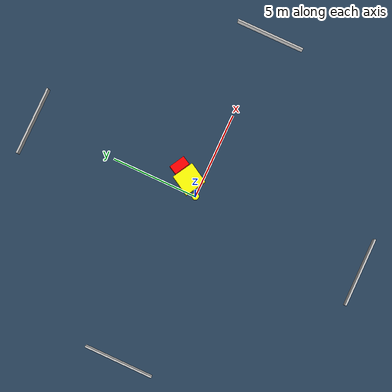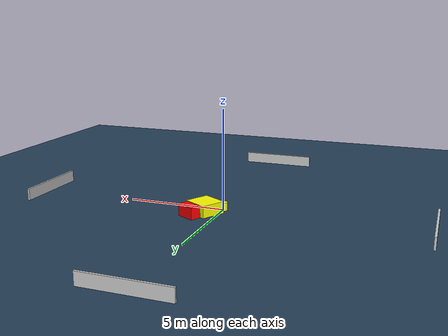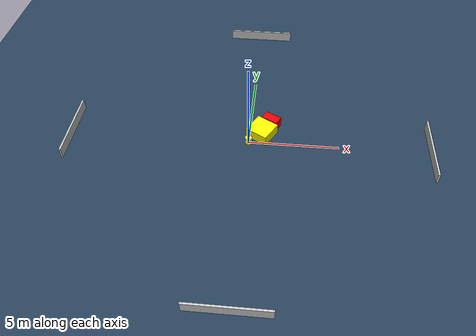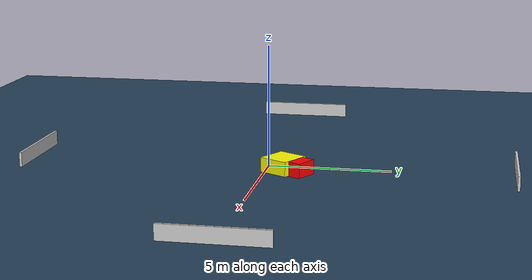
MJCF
<?xml version="1.0" ?>
<mujoco model="generated_environment">
  <option timestep="0.01" integrator="RK4" cone="elliptic"/>
  <default>
    <geom density="1"/>
  </default>
  <asset>
    <texture builtin="gradient" height="3072" name="skybox" rgb1="0.3 0.5 0.7" rgb2="0 0 0" type="skybox" width="512"/>
    <texture builtin="checker" height="300" name="groundplane" rgb1="0.2 0.3 0.4" rgb2="0.1 0.2 0.3" type="2d" width="300"/>
    <material name="groundplane" reflectance="0.2" texrepeat="5 5" texture="groundplane"/>
  </asset>
  <worldbody>
    <light dir="0 0 -1" directional="true" pos="0 0 1.5"/>
    <geom condim="3" friction="0.5 0.005 0.001" material="groundplane" name="floor" pos="0 0 0" size="0 0 0.05" type="plane"/>
    <body name="walls">
      <geom name="wall_1" condim="4" pos="-10.0 0.0 0.3" rgba="0.800000011920929 0.800000011920929 0.800000011920929 1.0" size="0.05 2.0 0.3" type="box"/>
      <geom name="wall_2" condim="4" pos="10.0 0.0 0.3" rgba="0.800000011920929 0.800000011920929 0.800000011920929 1.0" size="0.05 2.0 0.3" type="box"/>
      <geom name="wall_3" condim="4" pos="0.0 -10.0 0.3" rgba="0.800000011920929 0.800000011920929 0.800000011920929 1.0" size="2.0 0.05 0.3" type="box"/>
      <geom name="wall_4" condim="4" pos="0.0 10.0 0.3" rgba="0.800000011920929 0.800000011920929 0.800000011920929 1.0" size="2.0 0.05 0.3" type="box"/>
    </body>
    <body name="robot">
      <joint name="joint_x" type="slide" pos="0 0 0" axis="1 0 0"/>
      <joint name="joint_y" type="slide" pos="0 0 0" axis="0 1 0"/>
      <geom name="robot" type="cylinder" pos="0.0 0.0 0.2" size="0.2 0.2 0.0" mass="5.0" friction="1.0 0.005 0.0001" condim="4" rgba="1.0 1.0 0.0 1.0"/>
    </body>
    <body name="obstacle_1_movable">
      <geom name="obstacle_1_movable" condim="4" pos="0.6973297790320597 0.7070595935424017 0.3" euler="0 0 240.13754662550426" friction="0.0 0.005 0.001" rgba="1.0 1.0 0.0 1.0" size="0.6325659927071703 0.6514551430226213 0.3" type="box" mass="0.1"/>
      <joint type="free"/>
    </body>
    <body name="obstacle_2_static">
      <geom name="obstacle_2_static" condim="4" pos="1.1810304137669045 1.5184890342417783 0.3" euler="0 0 61.560852261711176" friction="0.0 0.005 0.001" rgba="1.0 0.0 0.0 1.0" size="0.26631340354170224 0.47802452719419153 0.3" type="box"/>
    </body>
  </worldbody>
  <actuator>
    <motor name="actuator_x" joint="joint_x" gear="1" ctrlrange="-1 1"/>
    <motor name="actuator_y" joint="joint_y" gear="1" ctrlrange="-1 1"/>
  </actuator>
</mujoco>
